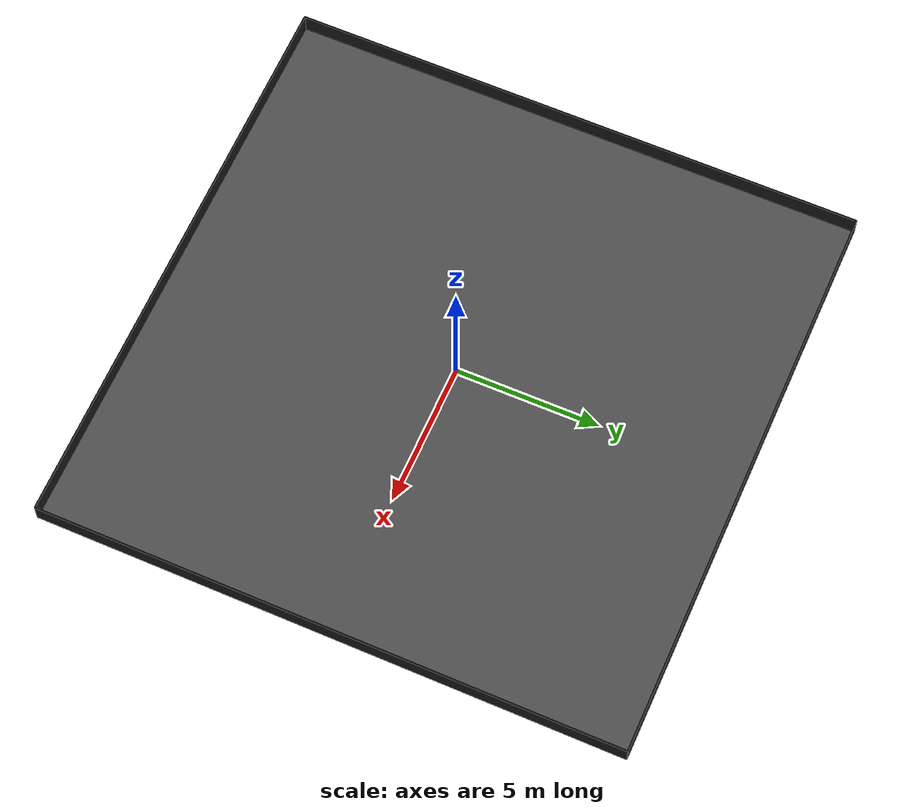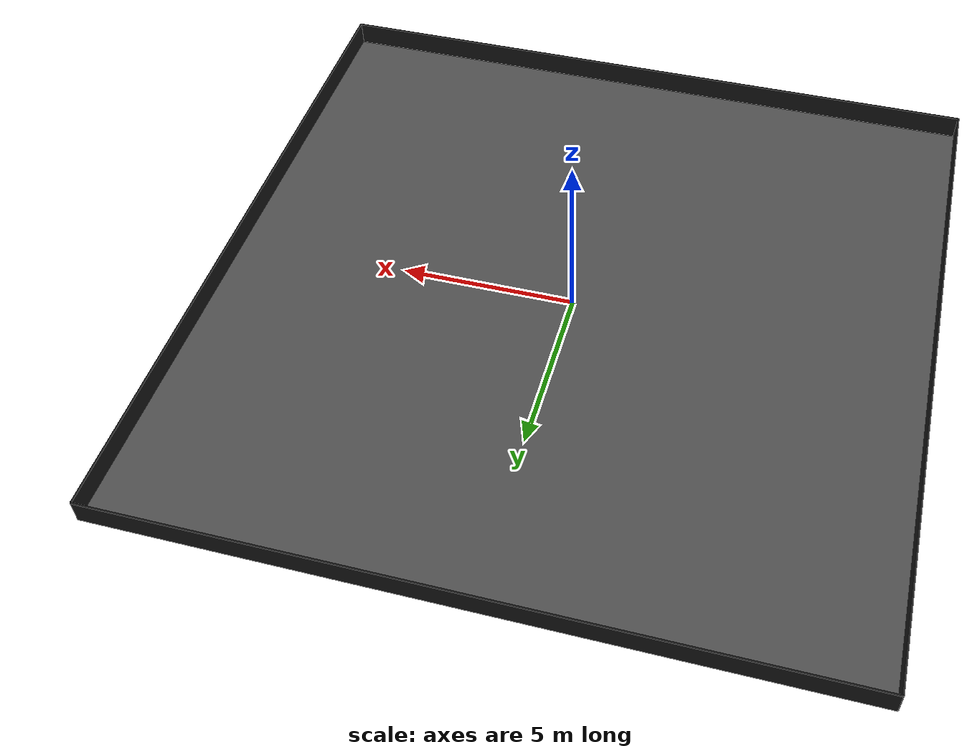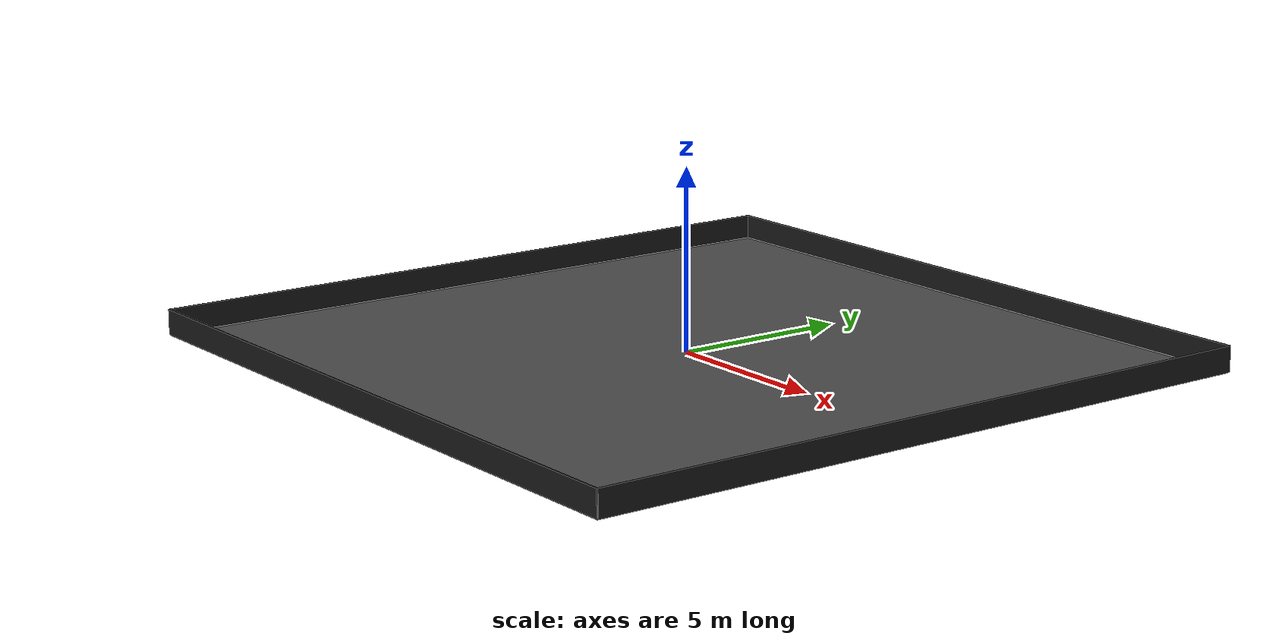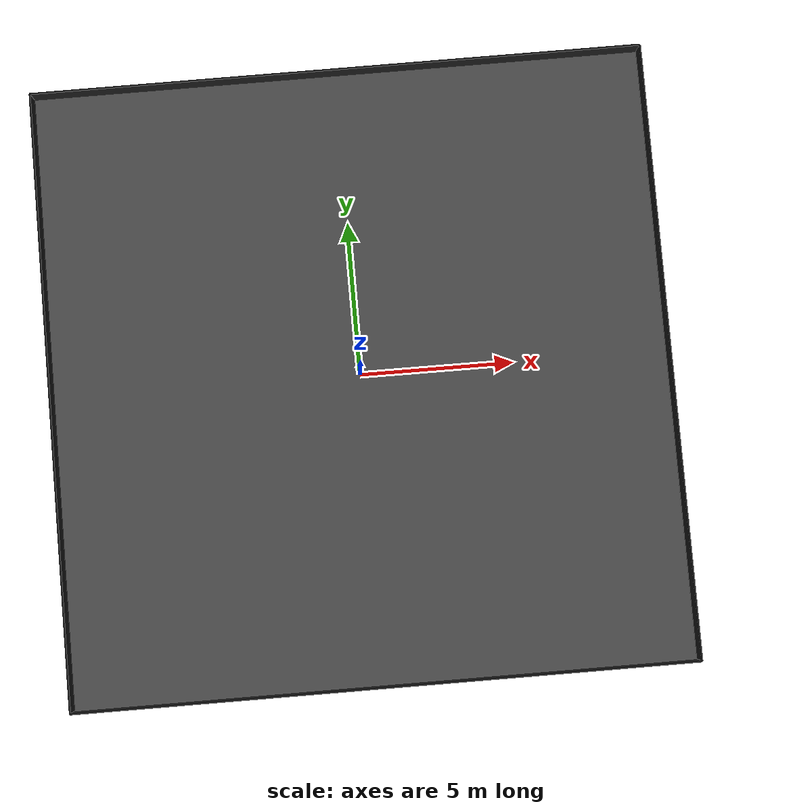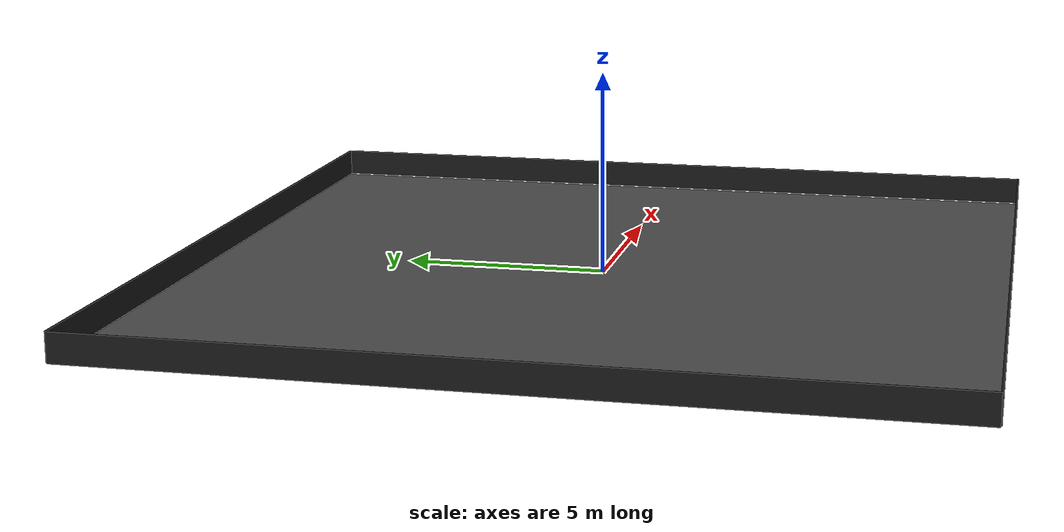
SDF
<?xml version="1.0" ?>
<sdf version="1.4">
  <world name="default">

    <include>
      <uri>model://labrob_ground</uri>
      <pose>0 0 0 0 0 0</pose>
    </include>

    <include>
      <uri>model://sun</uri>
    </include>

    <include>
      <uri>model://borders</uri>
      <pose>0 0 0 0 0 0</pose>
    </include>

  </world>
</sdf>

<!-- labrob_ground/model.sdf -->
<sdf version="1.5">
  <model name="labrob_ground">
    <static>true</static>
    <link name="link">
      <collision name="collision">
        <geometry>
          <plane>
            <normal>0 0 1</normal>
            <size>20 20</size>
          </plane>
        </geometry>
        <surface>

        <contact>
          <collide_bitmask>0x02</collide_bitmask>
        </contact>

        </surface>
      </collision>
      <visual name="visual">
        <cast_shadows>false</cast_shadows>
        <geometry>
          <plane>
            <normal>0 0 1</normal>
            <size>20 20</size>
          </plane>
        </geometry>
        <material>
          <script>
            <uri>model://labrob_ground/materials/scripts/</uri>
            <uri>model://labrob_ground/materials/textures/</uri>
            <name>Labrob/AsphaltGround</name>
          </script>
        </material>
      </visual>
    </link>
  </model>
</sdf>

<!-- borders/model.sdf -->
<sdf version='1.4'>
  <model name="borders">
	<static>true</static>
	<link name='chassis_pos_x'>
	<pose>10 0 0.35 0 0 1.57079</pose>

	<collision name='collision_pos_x'>
	  <geometry>
		<box>
		  <size>20 .05 0.7</size>
		</box>
	  </geometry>
	</collision>

	<visual name='visual'>
	  <geometry>
		<box>
		  <size>20 .05 0.7</size>
		</box>
	  </geometry>
      <material>
        <ambient>.1 .1 .1 1</ambient>
        <diffuse>.1 .1 .1 1</diffuse>
        <specular>0.1 0.1 0.1 1</specular>
        <emissive>0 0 0 0</emissive>
      </material>
	</visual>
	<sensor name="contact_sensor_1" type="contact">

	<plugin name="my_contact_plugin" filename="libgazebo_ros_bumper.so">
		<bumperTopicName>border_bumper</bumperTopicName>
    		<frameName>world</frameName>
	</plugin>
          <contact>
            <collision>collision_pos_x</collision>
          </contact>

      </sensor>
	</link>

	<link name='chassis_neg_x'>
	<pose>-10 0 0.35 0 0 1.57079</pose>

	<collision name='collision_neg_x'>
	  <geometry>
		<box>
		  <size>20 .05 0.7</size>
		</box>
	  </geometry>
	</collision>

	<visual name='visual'>
	  <geometry>
		<box>
		  <size>20 .05 0.7</size>
		</box>
	  </geometry>
      <material>
        <ambient>.1 .1 .1 1</ambient>
        <diffuse>.1 .1 .1 1</diffuse>
        <specular>0.1 0.1 0.1 1</specular>
        <emissive>0 0 0 0</emissive>
      </material>
	</visual>
	<sensor name="contact_sensor_2" type="contact">

	<plugin name="my_contact_plugin" filename="libgazebo_ros_bumper.so">
		<bumperTopicName>border_bumper</bumperTopicName>
    		<frameName>world</frameName>
	</plugin>
          <contact>
            <collision>collision_neg_x</collision>
          </contact>

      </sensor>
	</link>

	<link name='chassis_pos_y'>
	<pose>0 10 0.35 0 0 0</pose>

	<collision name='collision_pos_y'>
	  <geometry>
		<box>
		  <size>20 .05 0.7</size>
		</box>
	  </geometry>
	</collision>

	<visual name='visual'>
	  <geometry>
		<box>
		  <size>20 .05 0.7</size>
		</box>
	  </geometry>
      <material>
        <ambient>.1 .1 .1 1</ambient>
        <diffuse>.1 .1 .1 1</diffuse>
        <specular>0.1 0.1 0.1 1</specular>
        <emissive>0 0 0 0</emissive>
      </material>
	</visual>
	<sensor name="contact_sensor_3" type="contact">

	<plugin name="my_contact_plugin" filename="libgazebo_ros_bumper.so">
		<bumperTopicName>border_bumper</bumperTopicName>
    		<frameName>world</frameName>
	</plugin>
          <contact>
            <collision>collision_pos_y</collision>
          </contact>

      </sensor>
	</link>

	<link name='chassis_neg_y'>
	<pose>0 -10 0.35 0 0 0</pose>

	<collision name='collision_neg_y'>
	  <geometry>
		<box>
		  <size>20 .05 0.7</size>
		</box>
	  </geometry>
	</collision>

	<visual name='visual'>
	  <geometry>
		<box>
		  <size>20 .05 0.7</size>
		</box>
	  </geometry>
      <material>
        <ambient>.1 .1 .1 1</ambient>
        <diffuse>.1 .1 .1 1</diffuse>
        <specular>0.1 0.1 0.1 1</specular>
        <emissive>0 0 0 0</emissive>
      </material>
	</visual>
	<sensor name="contact_sensor_4" type="contact">

	<plugin name="my_contact_plugin" filename="libgazebo_ros_bumper.so">
		<bumperTopicName>border_bumper</bumperTopicName>
    		<frameName>world</frameName>
	</plugin>
          <contact>
            <collision>collision_neg_y</collision>
          </contact>

      </sensor>
	</link>
	</model>
</sdf>
